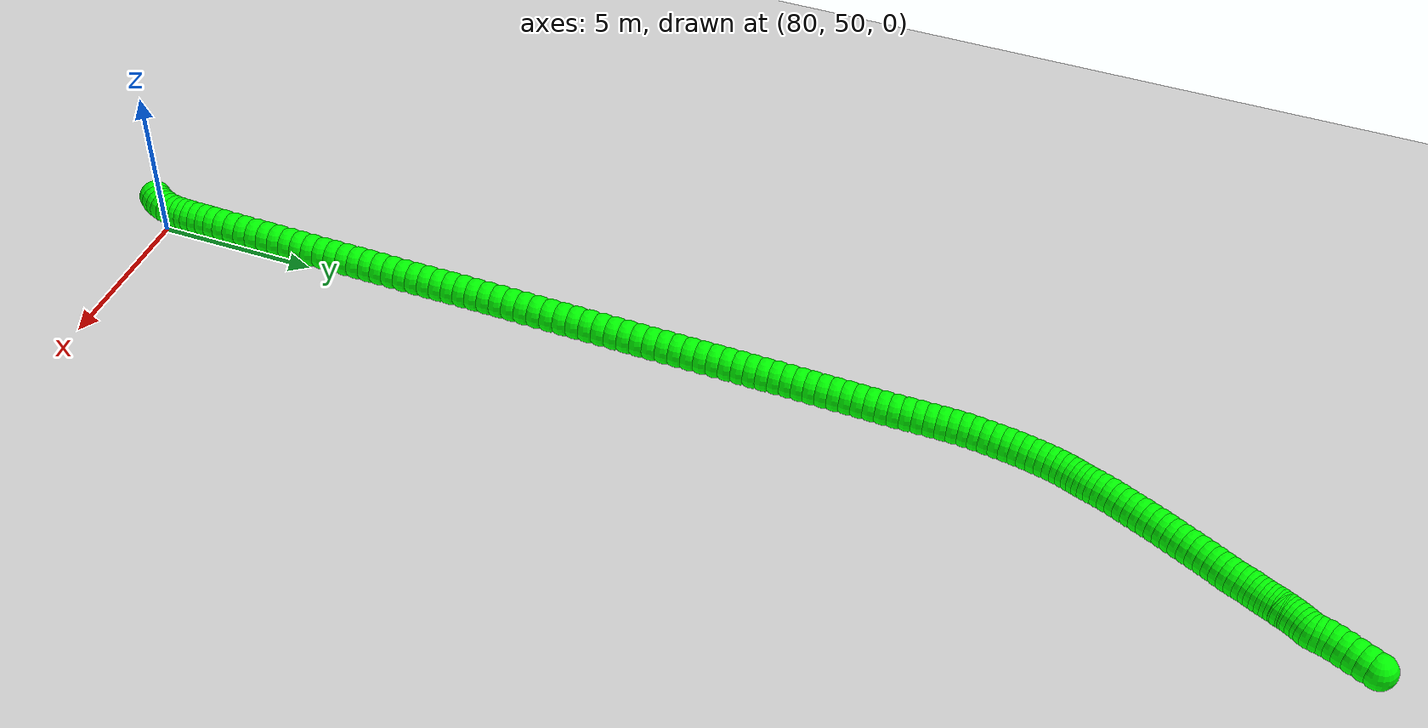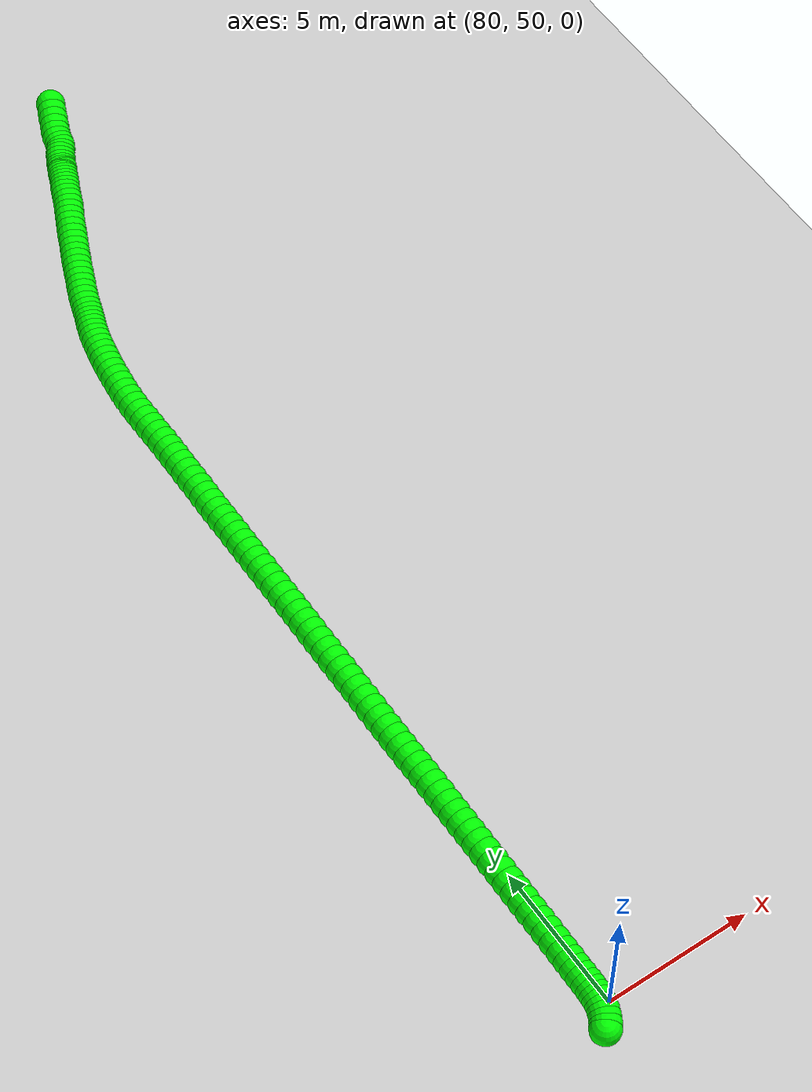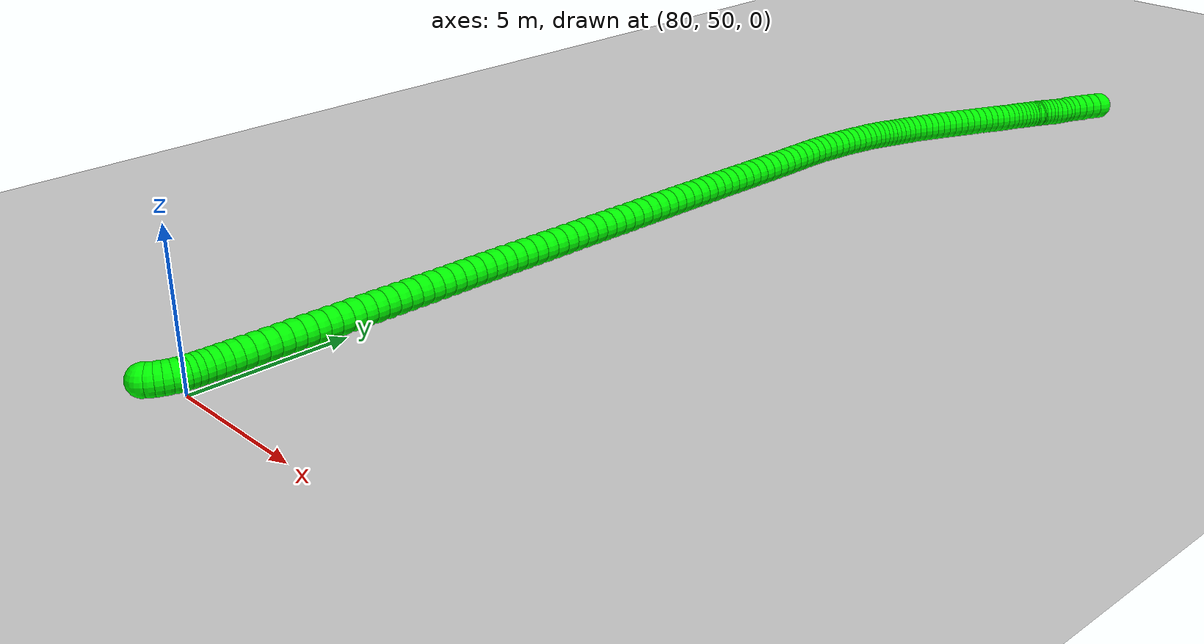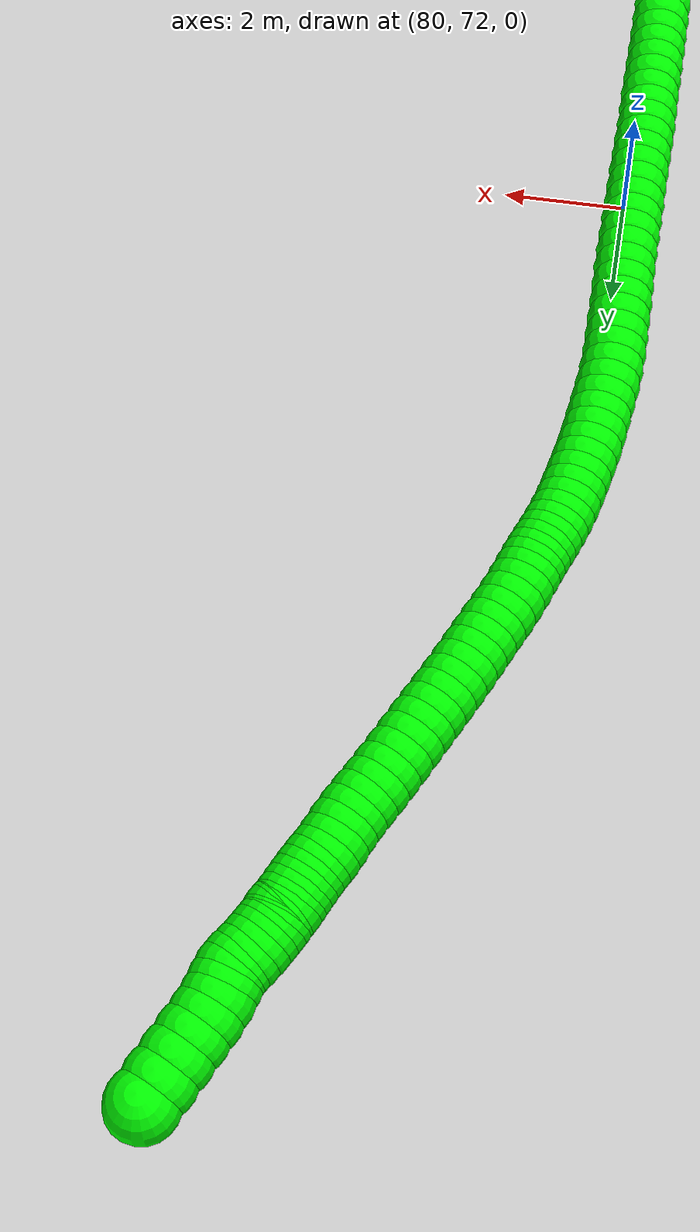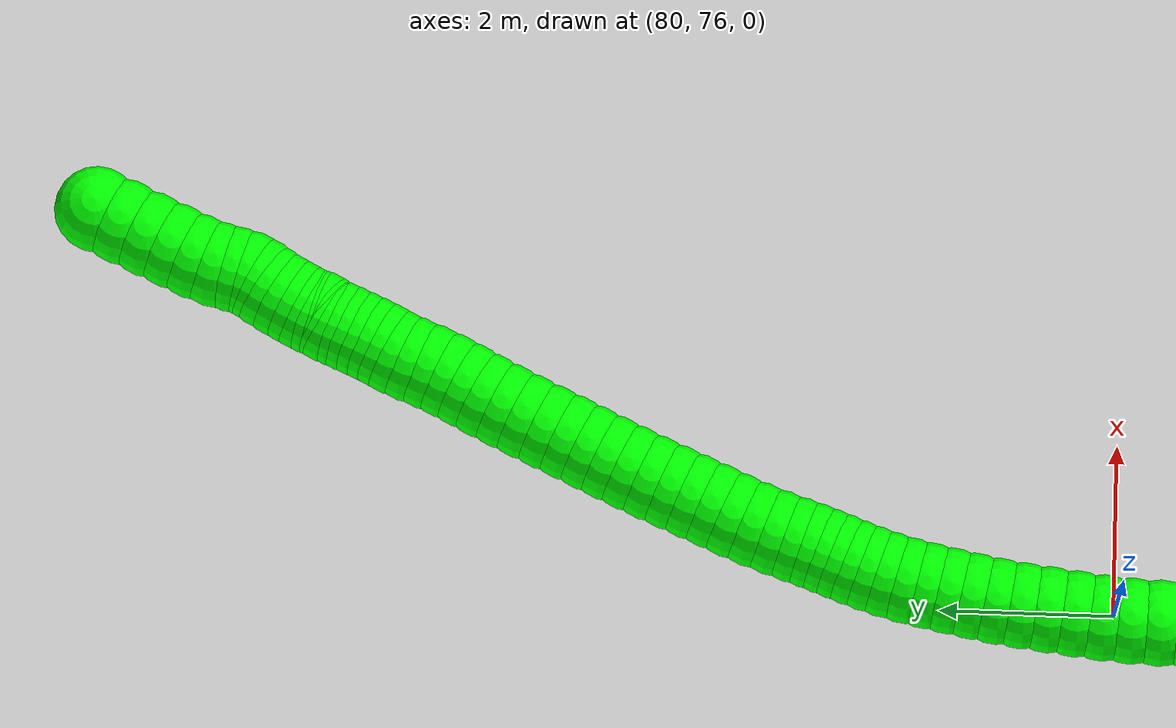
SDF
<sdf version="1.6">
 <world name="default">
  <include><uri>model://sun</uri></include>
  <include><uri>model://ground_plane</uri></include>
  <model name="marker_136">
   <static>true</static>
   <link name="link">
    <visual name="visual">
     <geometry><sphere><radius>0.5</radius></sphere></geometry>
     <material><ambient>0 1 0 1</ambient><diffuse>0 1 0 1</diffuse></material>
     <pose>84.2918523964797 87.85118901691362 0.5 0 0 0</pose>
    </visual>
   </link>
  </model>
  <model name="marker_137">
   <static>true</static>
   <link name="link">
    <visual name="visual">
     <geometry><sphere><radius>0.5</radius></sphere></geometry>
     <material><ambient>0 1 0 1</ambient><diffuse>0 1 0 1</diffuse></material>
     <pose>84.15284224068824 87.5390210018801 0.5 0 0 0</pose>
    </visual>
   </link>
  </model>
  <model name="marker_138">
   <static>true</static>
   <link name="link">
    <visual name="visual">
     <geometry><sphere><radius>0.5</radius></sphere></geometry>
     <material><ambient>0 1 0 1</ambient><diffuse>0 1 0 1</diffuse></material>
     <pose>84.01658931115942 87.23461632753101 0.5 0 0 0</pose>
    </visual>
   </link>
  </model>
  <model name="marker_139">
   <static>true</static>
   <link name="link">
    <visual name="visual">
     <geometry><sphere><radius>0.5</radius></sphere></geometry>
     <material><ambient>0 1 0 1</ambient><diffuse>0 1 0 1</diffuse></material>
     <pose>83.88929736683721 86.94818991582761 0.5 0 0 0</pose>
    </visual>
   </link>
  </model>
  <model name="marker_140">
   <static>true</static>
   <link name="link">
    <visual name="visual">
     <geometry><sphere><radius>0.5</radius></sphere></geometry>
     <material><ambient>0 1 0 1</ambient><diffuse>0 1 0 1</diffuse></material>
     <pose>83.77234502091827 86.68382773555729 0.5 0 0 0</pose>
    </visual>
   </link>
  </model>
  <model name="marker_141">
   <static>true</static>
   <link name="link">
    <visual name="visual">
     <geometry><sphere><radius>0.5</radius></sphere></geometry>
     <material><ambient>0 1 0 1</ambient><diffuse>0 1 0 1</diffuse></material>
     <pose>83.68457331923666 86.4411211898297 0.5 0 0 0</pose>
    </visual>
   </link>
  </model>
  <model name="marker_142">
   <static>true</static>
   <link name="link">
    <visual name="visual">
     <geometry><sphere><radius>0.5</radius></sphere></geometry>
     <material><ambient>0 1 0 1</ambient><diffuse>0 1 0 1</diffuse></material>
     <pose>83.63218602086702 86.23028520062059 0.5 0 0 0</pose>
    </visual>
   </link>
  </model>
  <model name="marker_143">
   <static>true</static>
   <link name="link">
    <visual name="visual">
     <geometry><sphere><radius>0.5</radius></sphere></geometry>
     <material><ambient>0 1 0 1</ambient><diffuse>0 1 0 1</diffuse></material>
     <pose>83.58669178805602 86.07052382119589 0.5 0 0 0</pose>
    </visual>
   </link>
  </model>
  <model name="marker_144">
   <static>true</static>
   <link name="link">
    <visual name="visual">
     <geometry><sphere><radius>0.5</radius></sphere></geometry>
     <material><ambient>0 1 0 1</ambient><diffuse>0 1 0 1</diffuse></material>
     <pose>83.52235650934558 85.94712756394564 0.5 0 0 0</pose>
    </visual>
   </link>
  </model>
  <model name="marker_145">
   <static>true</static>
   <link name="link">
    <visual name="visual">
     <geometry><sphere><radius>0.5</radius></sphere></geometry>
     <material><ambient>0 1 0 1</ambient><diffuse>0 1 0 1</diffuse></material>
     <pose>83.44239694867615 85.82659148484078 0.5 0 0 0</pose>
    </visual>
   </link>
  </model>
  <model name="marker_146">
   <static>true</static>
   <link name="link">
    <visual name="visual">
     <geometry><sphere><radius>0.5</radius></sphere></geometry>
     <material><ambient>0 1 0 1</ambient><diffuse>0 1 0 1</diffuse></material>
     <pose>83.35094894534369 85.67459344610052 0.5 0 0 0</pose>
    </visual>
   </link>
  </model>
  <model name="marker_147">
   <static>true</static>
   <link name="link">
    <visual name="visual">
     <geometry><sphere><radius>0.5</radius></sphere></geometry>
     <material><ambient>0 1 0 1</ambient><diffuse>0 1 0 1</diffuse></material>
     <pose>83.26846192728317 85.51973522922216 0.5 0 0 0</pose>
    </visual>
   </link>
  </model>
  <model name="marker_148">
   <static>true</static>
   <link name="link">
    <visual name="visual">
     <geometry><sphere><radius>0.5</radius></sphere></geometry>
     <material><ambient>0 1 0 1</ambient><diffuse>0 1 0 1</diffuse></material>
     <pose>83.20734341251315 85.40042494075206 0.5 0 0 0</pose>
    </visual>
   </link>
  </model>
  <model name="marker_149">
   <static>true</static>
   <link name="link">
    <visual name="visual">
     <geometry><sphere><radius>0.5</radius></sphere></geometry>
     <material><ambient>0 1 0 1</ambient><diffuse>0 1 0 1</diffuse></material>
     <pose>83.17012085842475 85.32483451826502 0.5 0 0 0</pose>
    </visual>
   </link>
  </model>
  <model name="marker_150">
   <static>true</static>
   <link name="link">
    <visual name="visual">
     <geometry><sphere><radius>0.5</radius></sphere></geometry>
     <material><ambient>0 1 0 1</ambient><diffuse>0 1 0 1</diffuse></material>
     <pose>83.15426680759418 85.27089973032072 0.5 0 0 0</pose>
    </visual>
   </link>
  </model>
  <model name="marker_151">
   <static>true</static>
   <link name="link">
    <visual name="visual">
     <geometry><sphere><radius>0.5</radius></sphere></geometry>
     <material><ambient>0 1 0 1</ambient><diffuse>0 1 0 1</diffuse></material>
     <pose>83.14323790267427 85.23453460815352 0.5 0 0 0</pose>
    </visual>
   </link>
  </model>
  <model name="marker_152">
   <static>true</static>
   <link name="link">
    <visual name="visual">
     <geometry><sphere><radius>0.5</radius></sphere></geometry>
     <material><ambient>0 1 0 1</ambient><diffuse>0 1 0 1</diffuse></material>
     <pose>83.12876246494238 85.2063414235466 0.5 0 0 0</pose>
    </visual>
   </link>
  </model>
  <model name="marker_153">
   <static>true</static>
   <link name="link">
    <visual name="visual">
     <geometry><sphere><radius>0.5</radius></sphere></geometry>
     <material><ambient>0 1 0 1</ambient><diffuse>0 1 0 1</diffuse></material>
     <pose>83.10555581084277 85.17855683582279 0.5 0 0 0</pose>
    </visual>
   </link>
  </model>
  <model name="marker_154">
   <static>true</static>
   <link name="link">
    <visual name="visual">
     <geometry><sphere><radius>0.5</radius></sphere></geometry>
     <material><ambient>0 1 0 1</ambient><diffuse>0 1 0 1</diffuse></material>
     <pose>83.07109048295167 85.11481572280759 0.5 0 0 0</pose>
    </visual>
   </link>
  </model>
  <model name="marker_155">
   <static>true</static>
   <link name="link">
    <visual name="visual">
     <geometry><sphere><radius>0.5</radius></sphere></geometry>
     <material><ambient>0 1 0 1</ambient><diffuse>0 1 0 1</diffuse></material>
     <pose>83.02973208950198 85.01511808449378 0.5 0 0 0</pose>
    </visual>
   </link>
  </model>
  <model name="marker_156">
   <static>true</static>
   <link name="link">
    <visual name="visual">
     <geometry><sphere><radius>0.5</radius></sphere></geometry>
     <material><ambient>0 1 0 1</ambient><diffuse>0 1 0 1</diffuse></material>
     <pose>82.97895317310255 84.894990602272 0.5 0 0 0</pose>
    </visual>
   </link>
  </model>
  <model name="marker_157">
   <static>true</static>
   <link name="link">
    <visual name="visual">
     <geometry><sphere><radius>0.5</radius></sphere></geometry>
     <material><ambient>0 1 0 1</ambient><diffuse>0 1 0 1</diffuse></material>
     <pose>82.9233491107925 84.76464819808899 0.5 0 0 0</pose>
    </visual>
   </link>
  </model>
  <model name="marker_158">
   <static>true</static>
   <link name="link">
    <visual name="visual">
     <geometry><sphere><radius>0.5</radius></sphere></geometry>
     <material><ambient>0 1 0 1</ambient><diffuse>0 1 0 1</diffuse></material>
     <pose>82.86360920912115 84.62858543760798 0.5 0 0 0</pose>
    </visual>
   </link>
  </model>
  <model name="marker_159">
   <static>true</static>
   <link name="link">
    <visual name="visual">
     <geometry><sphere><radius>0.5</radius></sphere></geometry>
     <material><ambient>0 1 0 1</ambient><diffuse>0 1 0 1</diffuse></material>
     <pose>82.7983548550225 84.49088828960912 0.5 0 0 0</pose>
    </visual>
   </link>
  </model>
  <model name="marker_160">
   <static>true</static>
   <link name="link">
    <visual name="visual">
     <geometry><sphere><radius>0.5</radius></sphere></geometry>
     <material><ambient>0 1 0 1</ambient><diffuse>0 1 0 1</diffuse></material>
     <pose>82.7183952943204 84.33807305711719 0.5 0 0 0</pose>
    </visual>
   </link>
  </model>
  <model name="marker_161">
   <static>true</static>
   <link name="link">
    <visual name="visual">
     <geometry><sphere><radius>0.5</radius></sphere></geometry>
     <material><ambient>0 1 0 1</ambient><diffuse>0 1 0 1</diffuse></material>
     <pose>82.63843573365097 84.1513442837276 0.5 0 0 0</pose>
    </visual>
   </link>
  </model>
  <model name="marker_162">
   <static>true</static>
   <link name="link">
    <visual name="visual">
     <geometry><sphere><radius>0.5</radius></sphere></geometry>
     <material><ambient>0 1 0 1</ambient><diffuse>0 1 0 1</diffuse></material>
     <pose>82.55663802213977 83.93928250387646 0.5 0 0 0</pose>
    </visual>
   </link>
  </model>
  <model name="marker_163">
   <static>true</static>
   <link name="link">
    <visual name="visual">
     <geometry><sphere><radius>0.5</radius></sphere></geometry>
     <material><ambient>0 1 0 1</ambient><diffuse>0 1 0 1</diffuse></material>
     <pose>82.46174348606064 83.72517773963888 0.5 0 0 0</pose>
    </visual>
   </link>
  </model>
  <model name="marker_164">
   <static>true</static>
   <link name="link">
    <visual name="visual">
     <geometry><sphere><radius>0.5</radius></sphere></geometry>
     <material><ambient>0 1 0 1</ambient><diffuse>0 1 0 1</diffuse></material>
     <pose>82.35444143189765 83.50821279724866 0.5 0 0 0</pose>
    </visual>
   </link>
  </model>
  <model name="marker_165">
   <static>true</static>
   <link name="link">
    <visual name="visual">
     <geometry><sphere><radius>0.5</radius></sphere></geometry>
     <material><ambient>0 1 0 1</ambient><diffuse>0 1 0 1</diffuse></material>
     <pose>82.240935618758 83.29043066110677 0.5 0 0 0</pose>
    </visual>
   </link>
  </model>
  <model name="marker_166">
   <static>true</static>
   <link name="link">
    <visual name="visual">
     <geometry><sphere><radius>0.5</radius></sphere></geometry>
     <material><ambient>0 1 0 1</ambient><diffuse>0 1 0 1</diffuse></material>
     <pose>82.1272000367468 83.05548745607089 0.5 0 0 0</pose>
    </visual>
   </link>
  </model>
  <model name="marker_167">
   <static>true</static>
   <link name="link">
    <visual name="visual">
     <geometry><sphere><radius>0.5</radius></sphere></geometry>
     <material><ambient>0 1 0 1</ambient><diffuse>0 1 0 1</diffuse></material>
     <pose>82.01070722850564 82.80992073220517 0.5 0 0 0</pose>
    </visual>
   </link>
  </model>
  <model name="marker_168">
   <static>true</static>
   <link name="link">
    <visual name="visual">
     <geometry><sphere><radius>0.5</radius></sphere></geometry>
     <material><ambient>0 1 0 1</ambient><diffuse>0 1 0 1</diffuse></material>
     <pose>81.89559303339578 82.55904224891731 0.5 0 0 0</pose>
    </visual>
   </link>
  </model>
  <model name="marker_169">
   <static>true</static>
   <link name="link">
    <visual name="visual">
     <geometry><sphere><radius>0.5</radius></sphere></geometry>
     <material><ambient>0 1 0 1</ambient><diffuse>0 1 0 1</diffuse></material>
     <pose>81.7813979137068 82.31020675001587 0.5 0 0 0</pose>
    </visual>
   </link>
  </model>
  <model name="marker_170">
   <static>true</static>
   <link name="link">
    <visual name="visual">
     <geometry><sphere><radius>0.5</radius></sphere></geometry>
     <material><ambient>0 1 0 1</ambient><diffuse>0 1 0 1</diffuse></material>
     <pose>81.6678921005345 82.06790880117137 0.5 0 0 0</pose>
    </visual>
   </link>
  </model>
  <model name="marker_171">
   <static>true</static>
   <link name="link">
    <visual name="visual">
     <geometry><sphere><radius>0.5</radius></sphere></geometry>
     <material><ambient>0 1 0 1</ambient><diffuse>0 1 0 1</diffuse></material>
     <pose>81.55760305133528 81.8305140148732 0.5 0 0 0</pose>
    </visual>
   </link>
  </model>
  <model name="marker_172">
   <static>true</static>
   <link name="link">
    <visual name="visual">
     <geometry><sphere><radius>0.5</radius></sphere></geometry>
     <material><ambient>0 1 0 1</ambient><diffuse>0 1 0 1</diffuse></material>
     <pose>81.44823307752428 81.59148484105717 0.5 0 0 0</pose>
    </visual>
   </link>
  </model>
  <model name="marker_173">
   <static>true</static>
   <link name="link">
    <visual name="visual">
     <geometry><sphere><radius>0.5</radius></sphere></geometry>
     <material><ambient>0 1 0 1</ambient><diffuse>0 1 0 1</diffuse></material>
     <pose>81.3395524102626 81.34510092342526 0.5 0 0 0</pose>
    </visual>
   </link>
  </model>
  <model name="marker_174">
   <static>true</static>
   <link name="link">
    <visual name="visual">
     <geometry><sphere><radius>0.5</radius></sphere></geometry>
     <material><ambient>0 1 0 1</ambient><diffuse>0 1 0 1</diffuse></material>
     <pose>81.23661596433244 81.10239437770494 0.5 0 0 0</pose>
    </visual>
   </link>
  </model>
  <model name="marker_175">
   <static>true</static>
   <link name="link">
    <visual name="visual">
     <geometry><sphere><radius>0.5</radius></sphere></geometry>
     <material><ambient>0 1 0 1</ambient><diffuse>0 1 0 1</diffuse></material>
     <pose>81.13666651347116 80.8654081882826 0.5 0 0 0</pose>
    </visual>
   </link>
  </model>
  <model name="marker_176">
   <static>true</static>
   <link name="link">
    <visual name="visual">
     <geometry><sphere><radius>0.5</radius></sphere></geometry>
     <material><ambient>0 1 0 1</ambient><diffuse>0 1 0 1</diffuse></material>
     <pose>81.0355682183501 80.62515322382454 0.5 0 0 0</pose>
    </visual>
   </link>
  </model>
  <model name="marker_177">
   <static>true</static>
   <link name="link">
    <visual name="visual">
     <geometry><sphere><radius>0.5</radius></sphere></geometry>
     <material><ambient>0 1 0 1</ambient><diffuse>0 1 0 1</diffuse></material>
     <pose>80.93148292816016 80.38775843752637 0.5 0 0 0</pose>
    </visual>
   </link>
  </model>
  <model name="marker_178">
   <static>true</static>
   <link name="link">
    <visual name="visual">
     <geometry><sphere><radius>0.5</radius></sphere></geometry>
     <material><ambient>0 1 0 1</ambient><diffuse>0 1 0 1</diffuse></material>
     <pose>80.8329120904302 80.14382610116401 0.5 0 0 0</pose>
    </visual>
   </link>
  </model>
  <model name="marker_179">
   <static>true</static>
   <link name="link">
    <visual name="visual">
     <geometry><sphere><radius>0.5</radius></sphere></geometry>
     <material><ambient>0 1 0 1</ambient><diffuse>0 1 0 1</diffuse></material>
     <pose>80.74353200681104 79.89744218353937 0.5 0 0 0</pose>
    </visual>
   </link>
  </model>
  <model name="marker_180">
   <static>true</static>
   <link name="link">
    <visual name="visual">
     <geometry><sphere><radius>0.5</radius></sphere></geometry>
     <material><ambient>0 1 0 1</ambient><diffuse>0 1 0 1</diffuse></material>
     <pose>80.6690868985689 79.67475688485841 0.5 0 0 0</pose>
    </visual>
   </link>
  </model>
  <model name="marker_181">
   <static>true</static>
   <link name="link">
    <visual name="visual">
     <geometry><sphere><radius>0.5</radius></sphere></geometry>
     <material><ambient>0 1 0 1</ambient><diffuse>0 1 0 1</diffuse></material>
     <pose>80.60888745921979 79.49211408024895 0.5 0 0 0</pose>
    </visual>
   </link>
  </model>
  <model name="marker_182">
   <static>true</static>
   <link name="link">
    <visual name="visual">
     <geometry><sphere><radius>0.5</radius></sphere></geometry>
     <material><ambient>0 1 0 1</ambient><diffuse>0 1 0 1</diffuse></material>
     <pose>80.55144524606797 79.33194410394843 0.5 0 0 0</pose>
    </visual>
   </link>
  </model>
  <model name="marker_183">
   <static>true</static>
   <link name="link">
    <visual name="visual">
     <geometry><sphere><radius>0.5</radius></sphere></geometry>
     <material><ambient>0 1 0 1</ambient><diffuse>0 1 0 1</diffuse></material>
     <pose>80.49216488210705 79.1734085151585 0.5 0 0 0</pose>
    </visual>
   </link>
  </model>
  <model name="marker_184">
   <static>true</static>
   <link name="link">
    <visual name="visual">
     <geometry><sphere><radius>0.5</radius></sphere></geometry>
     <material><ambient>0 1 0 1</ambient><diffuse>0 1 0 1</diffuse></material>
     <pose>80.4285189099786 79.00588379504936 0.5 0 0 0</pose>
    </visual>
   </link>
  </model>
  <model name="marker_185">
   <static>true</static>
   <link name="link">
    <visual name="visual">
     <geometry><sphere><radius>0.5</radius></sphere></geometry>
     <material><ambient>0 1 0 1</ambient><diffuse>0 1 0 1</diffuse></material>
     <pose>80.36487293781751 78.82242379668098 0.5 0 0 0</pose>
    </visual>
   </link>
  </model>
  <model name="marker_186">
   <static>true</static>
   <link name="link">
    <visual name="visual">
     <geometry><sphere><radius>0.5</radius></sphere></geometry>
     <material><ambient>0 1 0 1</ambient><diffuse>0 1 0 1</diffuse></material>
     <pose>80.30076742794597 78.62016834191523 0.5 0 0 0</pose>
    </visual>
   </link>
  </model>
  <model name="marker_187">
   <static>true</static>
   <link name="link">
    <visual name="visual">
     <geometry><sphere><radius>0.5</radius></sphere></geometry>
     <material><ambient>0 1 0 1</ambient><diffuse>0 1 0 1</diffuse></material>
     <pose>80.23918937549817 78.39217128381212 0.5 0 0 0</pose>
    </visual>
   </link>
  </model>
  <model name="marker_188">
   <static>true</static>
   <link name="link">
    <visual name="visual">
     <geometry><sphere><radius>0.5</radius></sphere></geometry>
     <material><ambient>0 1 0 1</ambient><diffuse>0 1 0 1</diffuse></material>
     <pose>80.18611277054654 78.1506905287193 0.5 0 0 0</pose>
    </visual>
   </link>
  </model>
  <model name="marker_189">
   <static>true</static>
   <link name="link">
    <visual name="visual">
     <geometry><sphere><radius>0.5</radius></sphere></geometry>
     <material><ambient>0 1 0 1</ambient><diffuse>0 1 0 1</diffuse></material>
     <pose>80.13441477872625 77.89940344855557 0.5 0 0 0</pose>
    </visual>
   </link>
  </model>
  <model name="marker_190">
   <static>true</static>
   <link name="link">
    <visual name="visual">
     <geometry><sphere><radius>0.5</radius></sphere></geometry>
     <material><ambient>0 1 0 1</ambient><diffuse>0 1 0 1</diffuse></material>
     <pose>80.08202748035662 77.63095529949786 0.5 0 0 0</pose>
    </visual>
   </link>
  </model>
  <model name="marker_191">
   <static>true</static>
   <link name="link">
    <visual name="visual">
     <geometry><sphere><radius>0.5</radius></sphere></geometry>
     <material><ambient>0 1 0 1</ambient><diffuse>0 1 0 1</diffuse></material>
     <pose>80.03193787050652 77.35474380975569 0.5 0 0 0</pose>
    </visual>
   </link>
  </model>
  <model name="marker_192">
   <static>true</static>
   <link name="link">
    <visual name="visual">
     <geometry><sphere><radius>0.5</radius></sphere></geometry>
     <material><ambient>0 1 0 1</ambient><diffuse>0 1 0 1</diffuse></material>
     <pose>79.99011993934639 77.06750020429335 0.5 0 0 0</pose>
    </visual>
   </link>
  </model>
  <model name="marker_193">
   <static>true</static>
   <link name="link">
    <visual name="visual">
     <geometry><sphere><radius>0.5</radius></sphere></geometry>
     <material><ambient>0 1 0 1</ambient><diffuse>0 1 0 1</diffuse></material>
     <pose>79.95335692293575 76.76636430497274 0.5 0 0 0</pose>
    </visual>
   </link>
  </model>
  <model name="marker_194">
   <static>true</static>
   <link name="link">
    <visual name="visual">
     <geometry><sphere><radius>0.5</radius></sphere></geometry>
     <material><ambient>0 1 0 1</ambient><diffuse>0 1 0 1</diffuse></material>
     <pose>79.91544506226535 76.45664787120874 0.5 0 0 0</pose>
    </visual>
   </link>
  </model>
  <model name="marker_195">
   <static>true</static>
   <link name="link">
    <visual name="visual">
     <geometry><sphere><radius>0.5</radius></sphere></geometry>
     <material><ambient>0 1 0 1</ambient><diffuse>0 1 0 1</diffuse></material>
     <pose>79.87937135240406 76.14284546865736 0.5 0 0 0</pose>
    </visual>
   </link>
  </model>
  <model name="marker_196">
   <static>true</static>
   <link name="link">
    <visual name="visual">
     <geometry><sphere><radius>0.5</radius></sphere></geometry>
     <material><ambient>0 1 0 1</ambient><diffuse>0 1 0 1</diffuse></material>
     <pose>79.8538670097849 75.82332270981522 0.5 0 0 0</pose>
    </visual>
   </link>
  </model>
  <model name="marker_197">
   <static>true</static>
   <link name="link">
    <visual name="visual">
     <geometry><sphere><radius>0.5</radius></sphere></geometry>
     <material><ambient>0 1 0 1</ambient><diffuse>0 1 0 1</diffuse></material>
     <pose>79.84054041634543 75.49562801339829 0.5 0 0 0</pose>
    </visual>
   </link>
  </model>
  <model name="marker_198">
   <static>true</static>
   <link name="link">
    <visual name="visual">
     <geometry><sphere><radius>0.5</radius></sphere></geometry>
     <material><ambient>0 1 0 1</ambient><diffuse>0 1 0 1</diffuse></material>
     <pose>79.83801295895435 75.16180436381477 0.5 0 0 0</pose>
    </visual>
   </link>
  </model>
  <model name="marker_199">
   <static>true</static>
   <link name="link">
    <visual name="visual">
     <geometry><sphere><radius>0.5</radius></sphere></geometry>
     <material><ambient>0 1 0 1</ambient><diffuse>0 1 0 1</diffuse></material>
     <pose>79.84054041634543 74.82103456729122 0.5 0 0 0</pose>
    </visual>
   </link>
  </model>
  <model name="marker_200">
   <static>true</static>
   <link name="link">
    <visual name="visual">
     <geometry><sphere><radius>0.5</radius></sphere></geometry>
     <material><ambient>0 1 0 1</ambient><diffuse>0 1 0 1</diffuse></material>
     <pose>79.84031064747388 74.4741358176011 0.5 0 0 0</pose>
    </visual>
   </link>
  </model>
  <model name="marker_201">
   <static>true</static>
   <link name="link">
    <visual name="visual">
     <geometry><sphere><radius>0.5</radius></sphere></geometry>
     <material><ambient>0 1 0 1</ambient><diffuse>0 1 0 1</diffuse></material>
     <pose>79.84559533109497 74.12478548663418 0.5 0 0 0</pose>
    </visual>
   </link>
  </model>
  <model name="marker_202">
   <static>true</static>
   <link name="link">
    <visual name="visual">
     <geometry><sphere><radius>0.5</radius></sphere></geometry>
     <material><ambient>0 1 0 1</ambient><diffuse>0 1 0 1</diffuse></material>
     <pose>79.85179909010427 73.77094059001128 0.5 0 0 0</pose>
    </visual>
   </link>
  </model>
  <model name="marker_203">
   <static>true</static>
   <link name="link">
    <visual name="visual">
     <geometry><sphere><radius>0.5</radius></sphere></geometry>
     <material><ambient>0 1 0 1</ambient><diffuse>0 1 0 1</diffuse></material>
     <pose>79.85110978355492 73.41546130587778 0.5 0 0 0</pose>
    </visual>
   </link>
  </model>
  <model name="marker_204">
   <static>true</static>
   <link name="link">
    <visual name="visual">
     <geometry><sphere><radius>0.5</radius></sphere></geometry>
     <material><ambient>0 1 0 1</ambient><diffuse>0 1 0 1</diffuse></material>
     <pose>79.84720371306517 73.05834763421916 0.5 0 0 0</pose>
    </visual>
   </link>
  </model>
  <model name="marker_205">
   <static>true</static>
   <link name="link">
    <visual name="visual">
     <geometry><sphere><radius>0.5</radius></sphere></geometry>
     <material><ambient>0 1 0 1</ambient><diffuse>0 1 0 1</diffuse></material>
     <pose>79.84168926060521 72.70409414072043 0.5 0 0 0</pose>
    </visual>
   </link>
  </model>
  <model name="marker_206">
   <static>true</static>
   <link name="link">
    <visual name="visual">
     <geometry><sphere><radius>0.5</radius></sphere></geometry>
     <material><ambient>0 1 0 1</ambient><diffuse>0 1 0 1</diffuse></material>
     <pose>79.83479619501394 72.34698046906907 0.5 0 0 0</pose>
    </visual>
   </link>
  </model>
  <model name="marker_207">
   <static>true</static>
   <link name="link">
    <visual name="visual">
     <geometry><sphere><radius>0.5</radius></sphere></geometry>
     <material><ambient>0 1 0 1</ambient><diffuse>0 1 0 1</diffuse></material>
     <pose>79.83157943107351 71.9841464411197 0.5 0 0 0</pose>
    </visual>
   </link>
  </model>
  <model name="marker_208">
   <static>true</static>
   <link name="link">
    <visual name="visual">
     <geometry><sphere><radius>0.5</radius></sphere></geometry>
     <material><ambient>0 1 0 1</ambient><diffuse>0 1 0 1</diffuse></material>
     <pose>79.8281328982942 71.62049521941866 0.5 0 0 0</pose>
    </visual>
   </link>
  </model>
  <model name="marker_209">
   <static>true</static>
   <link name="link">
    <visual name="visual">
     <geometry><sphere><radius>0.5</radius></sphere></geometry>
     <material><ambient>0 1 0 1</ambient><diffuse>0 1 0 1</diffuse></material>
     <pose>79.8203207573147 71.26052136961466 0.5 0 0 0</pose>
    </visual>
   </link>
  </model>
  <model name="marker_210">
   <static>true</static>
   <link name="link">
    <visual name="visual">
     <geometry><sphere><radius>0.5</radius></sphere></geometry>
     <material><ambient>0 1 0 1</ambient><diffuse>0 1 0 1</diffuse></material>
     <pose>79.81319792288453 70.90626787610867 0.5 0 0 0</pose>
    </visual>
   </link>
  </model>
  <model name="marker_211">
   <static>true</static>
   <link name="link">
    <visual name="visual">
     <geometry><sphere><radius>0.5</radius></sphere></geometry>
     <material><ambient>0 1 0 1</ambient><diffuse>0 1 0 1</diffuse></material>
     <pose>79.80630485729324 70.54833701070564 0.5 0 0 0</pose>
    </visual>
   </link>
  </model>
  <model name="marker_212">
   <static>true</static>
   <link name="link">
    <visual name="visual">
     <geometry><sphere><radius>0.5</radius></sphere></geometry>
     <material><ambient>0 1 0 1</ambient><diffuse>0 1 0 1</diffuse></material>
     <pose>79.80607508845435 70.1842771921215 0.5 0 0 0</pose>
    </visual>
   </link>
  </model>
  <model name="marker_213">
   <static>true</static>
   <link name="link">
    <visual name="visual">
     <geometry><sphere><radius>0.5</radius></sphere></geometry>
     <material><ambient>0 1 0 1</ambient><diffuse>0 1 0 1</diffuse></material>
     <pose>79.81044069665455 69.81449701723938 0.5 0 0 0</pose>
    </visual>
   </link>
  </model>
  <model name="marker_214">
   <static>true</static>
   <link name="link">
    <visual name="visual">
     <geometry><sphere><radius>0.5</radius></sphere></geometry>
     <material><ambient>0 1 0 1</ambient><diffuse>0 1 0 1</diffuse></material>
     <pose>79.80607508845435 69.44185666421187 0.5 0 0 0</pose>
    </visual>
   </link>
  </model>
  <model name="marker_215">
   <static>true</static>
   <link name="link">
    <visual name="visual">
     <geometry><sphere><radius>0.5</radius></sphere></geometry>
     <material><ambient>0 1 0 1</ambient><diffuse>0 1 0 1</diffuse></material>
     <pose>79.8007904048333 69.06758192367374 0.5 0 0 0</pose>
    </visual>
   </link>
  </model>
  <model name="marker_216">
   <static>true</static>
   <link name="link">
    <visual name="visual">
     <geometry><sphere><radius>0.5</radius></sphere></geometry>
     <material><ambient>0 1 0 1</ambient><diffuse>0 1 0 1</diffuse></material>
     <pose>79.79918202286308 68.68758682683763 0.5 0 0 0</pose>
    </visual>
   </link>
  </model>
  <model name="marker_217">
   <static>true</static>
   <link name="link">
    <visual name="visual">
     <geometry><sphere><radius>0.5</radius></sphere></geometry>
     <material><ambient>0 1 0 1</ambient><diffuse>0 1 0 1</diffuse></material>
     <pose>79.7959652589553 68.30105417994457 0.5 0 0 0</pose>
    </visual>
   </link>
  </model>
  <model name="marker_218">
   <static>true</static>
   <link name="link">
    <visual name="visual">
     <geometry><sphere><radius>0.5</radius></sphere></geometry>
     <material><ambient>0 1 0 1</ambient><diffuse>0 1 0 1</diffuse></material>
     <pose>79.7959652589553 67.912069951782 0.5 0 0 0</pose>
    </visual>
   </link>
  </model>
  <model name="marker_219">
   <static>true</static>
   <link name="link">
    <visual name="visual">
     <geometry><sphere><radius>0.5</radius></sphere></geometry>
     <material><ambient>0 1 0 1</ambient><diffuse>0 1 0 1</diffuse></material>
     <pose>79.79435687698509 67.51940835172236 0.5 0 0 0</pose>
    </visual>
   </link>
  </model>
  <model name="marker_220">
   <static>true</static>
   <link name="link">
    <visual name="visual">
     <geometry><sphere><radius>0.5</radius></sphere></geometry>
     <material><ambient>0 1 0 1</ambient><diffuse>0 1 0 1</diffuse></material>
     <pose>79.7902210376238 67.12102639535746 0.5 0 0 0</pose>
    </visual>
   </link>
  </model>
  <model name="marker_221">
   <static>true</static>
   <link name="link">
    <visual name="visual">
     <geometry><sphere><radius>0.5</radius></sphere></geometry>
     <material><ambient>0 1 0 1</ambient><diffuse>0 1 0 1</diffuse></material>
     <pose>79.78953173107448 66.71937566397136 0.5 0 0 0</pose>
    </visual>
   </link>
  </model>
  <model name="marker_222">
   <static>true</static>
   <link name="link">
    <visual name="visual">
     <geometry><sphere><radius>0.5</radius></sphere></geometry>
     <material><ambient>0 1 0 1</ambient><diffuse>0 1 0 1</diffuse></material>
     <pose>79.79159965075512 66.31486475443263 0.5 0 0 0</pose>
    </visual>
   </link>
  </model>
  <model name="marker_223">
   <static>true</static>
   <link name="link">
    <visual name="visual">
     <geometry><sphere><radius>0.5</radius></sphere></geometry>
     <material><ambient>0 1 0 1</ambient><diffuse>0 1 0 1</diffuse></material>
     <pose>79.78746381139382 65.9160742011919 0.5 0 0 0</pose>
    </visual>
   </link>
  </model>
  <model name="marker_224">
   <static>true</static>
   <link name="link">
    <visual name="visual">
     <geometry><sphere><radius>0.5</radius></sphere></geometry>
     <material><ambient>0 1 0 1</ambient><diffuse>0 1 0 1</diffuse></material>
     <pose>79.78309820319363 65.5160578573164 0.5 0 0 0</pose>
    </visual>
   </link>
  </model>
  <model name="marker_225">
   <static>true</static>
   <link name="link">
    <visual name="visual">
     <geometry><sphere><radius>0.5</radius></sphere></geometry>
     <material><ambient>0 1 0 1</ambient><diffuse>0 1 0 1</diffuse></material>
     <pose>79.77758375073367 65.11318133529554 0.5 0 0 0</pose>
    </visual>
   </link>
  </model>
  <model name="marker_226">
   <static>true</static>
   <link name="link">
    <visual name="visual">
     <geometry><sphere><radius>0.5</radius></sphere></geometry>
     <material><ambient>0 1 0 1</ambient><diffuse>0 1 0 1</diffuse></material>
     <pose>79.77344791140503 64.7033586663419 0.5 0 0 0</pose>
    </visual>
   </link>
  </model>
  <model name="marker_227">
   <static>true</static>
   <link name="link">
    <visual name="visual">
     <geometry><sphere><radius>0.5</radius></sphere></geometry>
     <material><ambient>0 1 0 1</ambient><diffuse>0 1 0 1</diffuse></material>
     <pose>79.7683929966555 64.29190160987038 0.5 0 0 0</pose>
    </visual>
   </link>
  </model>
  <model name="marker_228">
   <static>true</static>
   <link name="link">
    <visual name="visual">
     <geometry><sphere><radius>0.5</radius></sphere></geometry>
     <material><ambient>0 1 0 1</ambient><diffuse>0 1 0 1</diffuse></material>
     <pose>79.76448692613309 63.882487537792585 0.5 0 0 0</pose>
    </visual>
   </link>
  </model>
  <model name="marker_229">
   <static>true</static>
   <link name="link">
    <visual name="visual">
     <geometry><sphere><radius>0.5</radius></sphere></geometry>
     <material><ambient>0 1 0 1</ambient><diffuse>0 1 0 1</diffuse></material>
     <pose>79.76517623271508 63.467761706299875 0.5 0 0 0</pose>
    </visual>
   </link>
  </model>
  <model name="marker_230">
   <static>true</static>
   <link name="link">
    <visual name="visual">
     <geometry><sphere><radius>0.5</radius></sphere></geometry>
     <material><ambient>0 1 0 1</ambient><diffuse>0 1 0 1</diffuse></material>
     <pose>79.7624190064851 63.049767099778684 0.5 0 0 0</pose>
    </visual>
   </link>
  </model>
  <model name="marker_231">
   <static>true</static>
   <link name="link">
    <visual name="visual">
     <geometry><sphere><radius>0.5</radius></sphere></geometry>
     <material><ambient>0 1 0 1</ambient><diffuse>0 1 0 1</diffuse></material>
     <pose>79.75897247367314 62.63422407452705 0.5 0 0 0</pose>
    </visual>
   </link>
  </model>
  <model name="marker_232">
   <static>true</static>
   <link name="link">
    <visual name="visual">
     <geometry><sphere><radius>0.5</radius></sphere></geometry>
     <material><ambient>0 1 0 1</ambient><diffuse>0 1 0 1</diffuse></material>
     <pose>79.75391755892362 62.21255209610156 0.5 0 0 0</pose>
    </visual>
   </link>
  </model>
  <model name="marker_233">
   <static>true</static>
   <link name="link">
    <visual name="visual">
     <geometry><sphere><radius>0.5</radius></sphere></geometry>
     <material><ambient>0 1 0 1</ambient><diffuse>0 1 0 1</diffuse></material>
     <pose>79.74702449336499 61.797826264608844 0.5 0 0 0</pose>
    </visual>
   </link>
  </model>
  <model name="marker_234">
   <static>true</static>
   <link name="link">
    <visual name="visual">
     <geometry><sphere><radius>0.5</radius></sphere></geometry>
     <material><ambient>0 1 0 1</ambient><diffuse>0 1 0 1</diffuse></material>
     <pose>79.74242911629325 61.38555201437842 0.5 0 0 0</pose>
    </visual>
   </link>
  </model>
  <model name="marker_235">
   <static>true</static>
   <link name="link">
    <visual name="visual">
     <geometry><sphere><radius>0.5</radius></sphere></geometry>
     <material><ambient>0 1 0 1</ambient><diffuse>0 1 0 1</diffuse></material>
     <pose>79.73967189006326 60.97940671732908 0.5 0 0 0</pose>
    </visual>
   </link>
  </model>
  <model name="marker_236">
   <static>true</static>
   <link name="link">
    <visual name="visual">
     <geometry><sphere><radius>0.5</radius></sphere></geometry>
     <material><ambient>0 1 0 1</ambient><diffuse>0 1 0 1</diffuse></material>
     <pose>79.73760397041528 60.577347389067135 0.5 0 0 0</pose>
    </visual>
   </link>
  </model>
  <model name="marker_237">
   <static>true</static>
   <link name="link">
    <visual name="visual">
     <geometry><sphere><radius>0.5</radius></sphere></geometry>
     <material><ambient>0 1 0 1</ambient><diffuse>0 1 0 1</diffuse></material>
     <pose>79.73576581957353 60.18345999836547 0.5 0 0 0</pose>
    </visual>
   </link>
  </model>
  <model name="marker_238">
   <static>true</static>
   <link name="link">
    <visual name="visual">
     <geometry><sphere><radius>0.5</radius></sphere></geometry>
     <material><ambient>0 1 0 1</ambient><diffuse>0 1 0 1</diffuse></material>
     <pose>79.73737420154373 59.788755413904894 0.5 0 0 0</pose>
    </visual>
   </link>
  </model>
  <model name="marker_239">
   <static>true</static>
   <link name="link">
    <visual name="visual">
     <geometry><sphere><radius>0.5</radius></sphere></geometry>
     <material><ambient>0 1 0 1</ambient><diffuse>0 1 0 1</diffuse></material>
     <pose>79.74128027203349 59.39895399199063 0.5 0 0 0</pose>
    </visual>
   </link>
  </model>
  <model name="marker_240">
   <static>true</static>
   <link name="link">
    <visual name="visual">
     <geometry><sphere><radius>0.5</radius></sphere></geometry>
     <material><ambient>0 1 0 1</ambient><diffuse>0 1 0 1</diffuse></material>
     <pose>79.74242911629325 59.005066601288966 0.5 0 0 0</pose>
    </visual>
   </link>
  </model>
  <model name="marker_241">
   <static>true</static>
   <link name="link">
    <visual name="visual">
     <geometry><sphere><radius>0.5</radius></sphere></geometry>
     <material><ambient>0 1 0 1</ambient><diffuse>0 1 0 1</diffuse></material>
     <pose>79.7447268048128 58.60831903244193 0.5 0 0 0</pose>
    </visual>
   </link>
  </model>
  <model name="marker_242">
   <static>true</static>
   <link name="link">
    <visual name="visual">
     <geometry><sphere><radius>0.5</radius></sphere></geometry>
     <material><ambient>0 1 0 1</ambient><diffuse>0 1 0 1</diffuse></material>
     <pose>79.74334819171413 58.20748549480751 0.5 0 0 0</pose>
    </visual>
   </link>
  </model>
  <model name="marker_243">
   <static>true</static>
   <link name="link">
    <visual name="visual">
     <geometry><sphere><radius>0.5</radius></sphere></geometry>
     <material><ambient>0 1 0 1</ambient><diffuse>0 1 0 1</diffuse></material>
     <pose>79.7385230458035 57.80951213532571 0.5 0 0 0</pose>
    </visual>
   </link>
  </model>
  <model name="marker_244">
   <static>true</static>
   <link name="link">
    <visual name="visual">
     <geometry><sphere><radius>0.5</radius></sphere></geometry>
     <material><ambient>0 1 0 1</ambient><diffuse>0 1 0 1</diffuse></material>
     <pose>79.73323836221509 57.41113017896807 0.5 0 0 0</pose>
    </visual>
   </link>
  </model>
  <model name="marker_245">
   <static>true</static>
   <link name="link">
    <visual name="visual">
     <geometry><sphere><radius>0.5</radius></sphere></geometry>
     <material><ambient>0 1 0 1</ambient><diffuse>0 1 0 1</diffuse></material>
     <pose>79.73140021137333 57.016834191383325 0.5 0 0 0</pose>
    </visual>
   </link>
  </model>
  <model name="marker_246">
   <static>true</static>
   <link name="link">
    <visual name="visual">
     <geometry><sphere><radius>0.5</radius></sphere></geometry>
     <material><ambient>0 1 0 1</ambient><diffuse>0 1 0 1</diffuse></material>
     <pose>79.72956206056423 56.62253820380583 0.5 0 0 0</pose>
    </visual>
   </link>
  </model>
  <model name="marker_247">
   <static>true</static>
   <link name="link">
    <visual name="visual">
     <geometry><sphere><radius>0.5</radius></sphere></geometry>
     <material><ambient>0 1 0 1</ambient><diffuse>0 1 0 1</diffuse></material>
     <pose>79.72703460317314 56.22987660373894 0.5 0 0 0</pose>
    </visual>
   </link>
  </model>
  <model name="marker_248">
   <static>true</static>
   <link name="link">
    <visual name="visual">
     <geometry><sphere><radius>0.5</radius></sphere></geometry>
     <material><ambient>0 1 0 1</ambient><diffuse>0 1 0 1</diffuse></material>
     <pose>79.72519645236403 55.836806406796214 0.5 0 0 0</pose>
    </visual>
   </link>
  </model>
  <model name="marker_249">
   <static>true</static>
   <link name="link">
    <visual name="visual">
     <geometry><sphere><radius>0.5</radius></sphere></geometry>
     <material><ambient>0 1 0 1</ambient><diffuse>0 1 0 1</diffuse></material>
     <pose>79.72381783923272 55.44496200048825 0.5 0 0 0</pose>
    </visual>
   </link>
  </model>
  <model name="marker_250">
   <static>true</static>
   <link name="link">
    <visual name="visual">
     <geometry><sphere><radius>0.5</radius></sphere></geometry>
     <material><ambient>0 1 0 1</ambient><diffuse>0 1 0 1</diffuse></material>
     <pose>79.7203713064534 55.05107460978659 0.5 0 0 0</pose>
    </visual>
   </link>
  </model>
  <model name="marker_251">
   <static>true</static>
   <link name="link">
    <visual name="visual">
     <geometry><sphere><radius>0.5</radius></sphere></geometry>
     <material><ambient>0 1 0 1</ambient><diffuse>0 1 0 1</diffuse></material>
     <pose>79.71485685399344 54.65963880036173 0.5 0 0 0</pose>
    </visual>
   </link>
  </model>
  <model name="marker_252">
   <static>true</static>
   <link name="link">
    <visual name="visual">
     <geometry><sphere><radius>0.5</radius></sphere></geometry>
     <material><ambient>0 1 0 1</ambient><diffuse>0 1 0 1</diffuse></material>
     <pose>79.71164009005302 54.26289123150744 0.5 0 0 0</pose>
    </visual>
   </link>
  </model>
  <model name="marker_253">
   <static>true</static>
   <link name="link">
    <visual name="visual">
     <geometry><sphere><radius>0.5</radius></sphere></geometry>
     <material><ambient>0 1 0 1</ambient><diffuse>0 1 0 1</diffuse></material>
     <pose>79.70865309498414 53.87431560022795 0.5 0 0 0</pose>
    </visual>
   </link>
  </model>
  <model name="marker_254">
   <static>true</static>
   <link name="link">
    <visual name="visual">
     <geometry><sphere><radius>0.5</radius></sphere></geometry>
     <material><ambient>0 1 0 1</ambient><diffuse>0 1 0 1</diffuse></material>
     <pose>79.70428748678397 53.48614856582429 0.5 0 0 0</pose>
    </visual>
   </link>
  </model>
  <model name="marker_255">
   <static>true</static>
   <link name="link">
    <visual name="visual">
     <geometry><sphere><radius>0.5</radius></sphere></geometry>
     <material><ambient>0 1 0 1</ambient><diffuse>0 1 0 1</diffuse></material>
     <pose>79.701530260554 53.09266977200573 0.5 0 0 0</pose>
    </visual>
   </link>
  </model>
  <model name="marker_256">
   <static>true</static>
   <link name="link">
    <visual name="visual">
     <geometry><sphere><radius>0.5</radius></sphere></geometry>
     <material><ambient>0 1 0 1</ambient><diffuse>0 1 0 1</diffuse></material>
     <pose>79.69946234087332 52.6975565906693 0.5 0 0 0</pose>
    </visual>
   </link>
  </model>
  <model name="marker_257">
   <static>true</static>
   <link name="link">
    <visual name="visual">
     <geometry><sphere><radius>0.5</radius></sphere></geometry>
     <material><ambient>0 1 0 1</ambient><diffuse>0 1 0 1</diffuse></material>
     <pose>79.69532650154468 52.30816376563088 0.5 0 0 0</pose>
    </visual>
   </link>
  </model>
  <model name="marker_258">
   <static>true</static>
   <link name="link">
    <visual name="visual">
     <geometry><sphere><radius>0.5</radius></sphere></geometry>
     <material><ambient>0 1 0 1</ambient><diffuse>0 1 0 1</diffuse></material>
     <pose>79.68820366711452 51.93184604069907 0.5 0 0 0</pose>
    </visual>
   </link>
  </model>
  <model name="marker_259">
   <static>true</static>
   <link name="link">
    <visual name="visual">
     <geometry><sphere><radius>0.5</radius></sphere></geometry>
     <material><ambient>0 1 0 1</ambient><diffuse>0 1 0 1</diffuse></material>
     <pose>79.68177013923368 51.593119228569215 0.5 0 0 0</pose>
    </visual>
   </link>
  </model>
  <model name="marker_260">
   <static>true</static>
   <link name="link">
    <visual name="visual">
     <geometry><sphere><radius>0.5</radius></sphere></geometry>
     <material><ambient>0 1 0 1</ambient><diffuse>0 1 0 1</diffuse></material>
     <pose>79.67556638022438 51.28953174797907 0.5 0 0 0</pose>
    </visual>
   </link>
  </model>
  <model name="marker_261">
   <static>true</static>
   <link name="link">
    <visual name="visual">
     <geometry><sphere><radius>0.5</radius></sphere></geometry>
     <material><ambient>0 1 0 1</ambient><diffuse>0 1 0 1</diffuse></material>
     <pose>79.67372822938263 50.998202173736594 0.5 0 0 0</pose>
    </visual>
   </link>
  </model>
  <model name="marker_262">
   <static>true</static>
   <link name="link">
    <visual name="visual">
     <geometry><sphere><radius>0.5</radius></sphere></geometry>
     <material><ambient>0 1 0 1</ambient><diffuse>0 1 0 1</diffuse></material>
     <pose>79.67097100315264 50.73179700907258 0.5 0 0 0</pose>
    </visual>
   </link>
  </model>
  <model name="marker_263">
   <static>true</static>
   <link name="link">
    <visual name="visual">
     <geometry><sphere><radius>0.5</radius></sphere></geometry>
     <material><ambient>0 1 0 1</ambient><diffuse>0 1 0 1</diffuse></material>
     <pose>79.6654565506927 50.51687505107606 0.5 0 0 0</pose>
    </visual>
   </link>
  </model>
  <model name="marker_264">
   <static>true</static>
   <link name="link">
    <visual name="visual">
     <geometry><sphere><radius>0.5</radius></sphere></geometry>
     <material><ambient>0 1 0 1</ambient><diffuse>0 1 0 1</diffuse></material>
     <pose>79.65603602774297 50.335458037101375 0.5 0 0 0</pose>
    </visual>
   </link>
  </model>
  <model name="marker_265">
   <static>true</static>
   <link name="link">
    <visual name="visual">
     <geometry><sphere><radius>0.5</radius></sphere></geometry>
     <material><ambient>0 1 0 1</ambient><diffuse>0 1 0 1</diffuse></material>
     <pose>79.63811405726443 50.14096592302009 0.5 0 0 0</pose>
    </visual>
   </link>
  </model>
  <model name="marker_266">
   <static>true</static>
   <link name="link">
    <visual name="visual">
     <geometry><sphere><radius>0.5</radius></sphere></geometry>
     <material><ambient>0 1 0 1</ambient><diffuse>0 1 0 1</diffuse></material>
     <pose>79.60020219659403 49.93217291819741 0.5 0 0 0</pose>
    </visual>
   </link>
  </model>
  <model name="marker_267">
   <static>true</static>
   <link name="link">
    <visual name="visual">
     <geometry><sphere><radius>0.5</radius></sphere></geometry>
     <material><ambient>0 1 0 1</ambient><diffuse>0 1 0 1</diffuse></material>
     <pose>79.53402876704185 49.72950886655584 0.5 0 0 0</pose>
    </visual>
   </link>
  </model>
  <model name="marker_268">
   <static>true</static>
   <link name="link">
    <visual name="visual">
     <geometry><sphere><radius>0.5</radius></sphere></geometry>
     <material><ambient>0 1 0 1</ambient><diffuse>0 1 0 1</diffuse></material>
     <pose>79.45039290472154 49.53583394622621 0.5 0 0 0</pose>
    </visual>
   </link>
  </model>
  <model name="marker_269">
   <static>true</static>
   <link name="link">
    <visual name="visual">
     <geometry><sphere><radius>0.5</radius></sphere></geometry>
     <material><ambient>0 1 0 1</ambient><diffuse>0 1 0 1</diffuse></material>
     <pose>79.34975414731092 49.35850290103893 0.5 0 0 0</pose>
    </visual>
   </link>
  </model>
  <model name="marker_270">
   <static>true</static>
   <link name="link">
    <visual name="visual">
     <geometry><sphere><radius>0.5</radius></sphere></geometry>
     <material><ambient>0 1 0 1</ambient><diffuse>0 1 0 1</diffuse></material>
     <pose>79.2291254997411 49.20609626542284 0.5 0 0 0</pose>
    </visual>
   </link>
  </model>
 </world>
</sdf>
